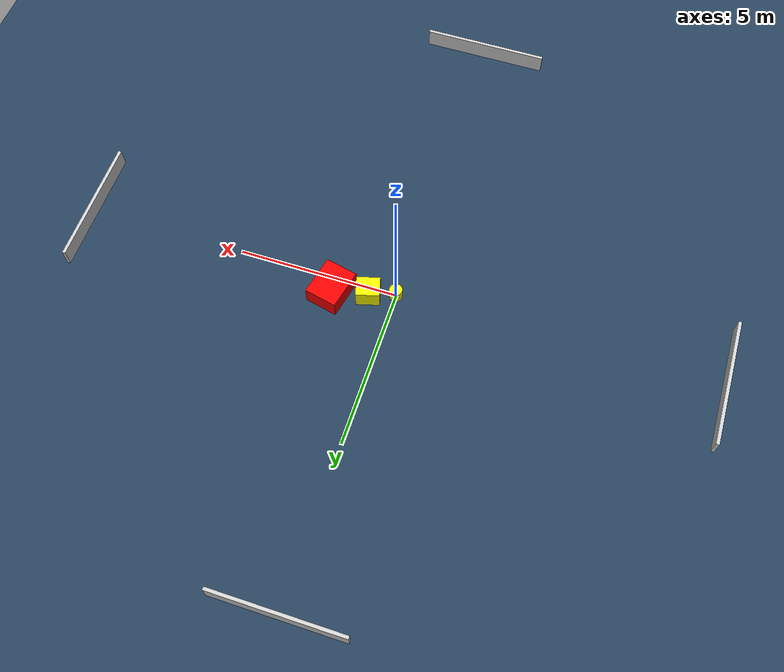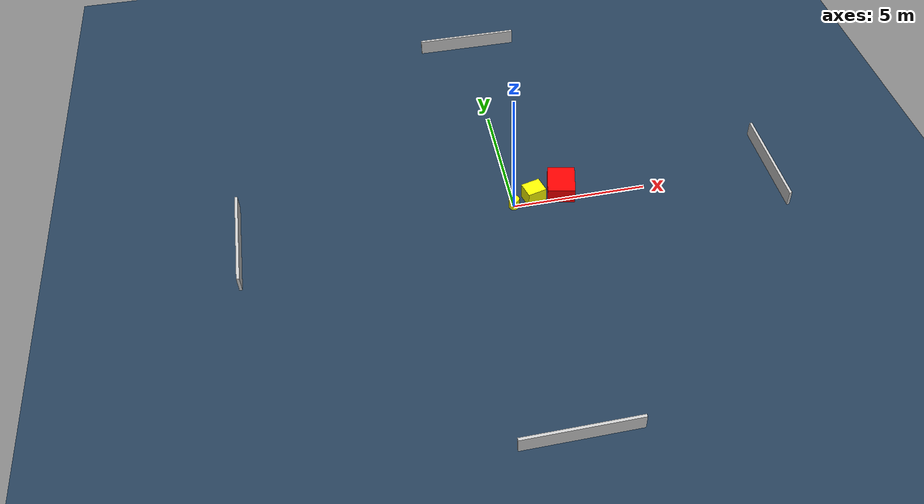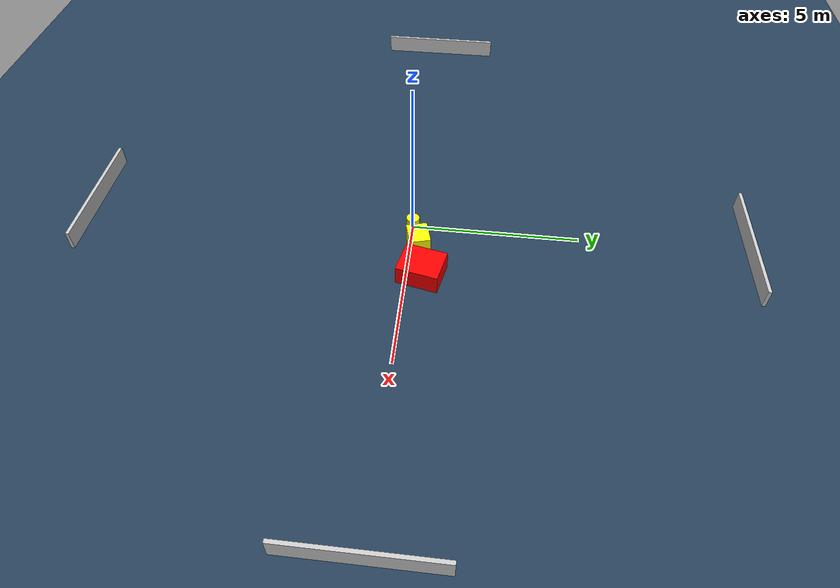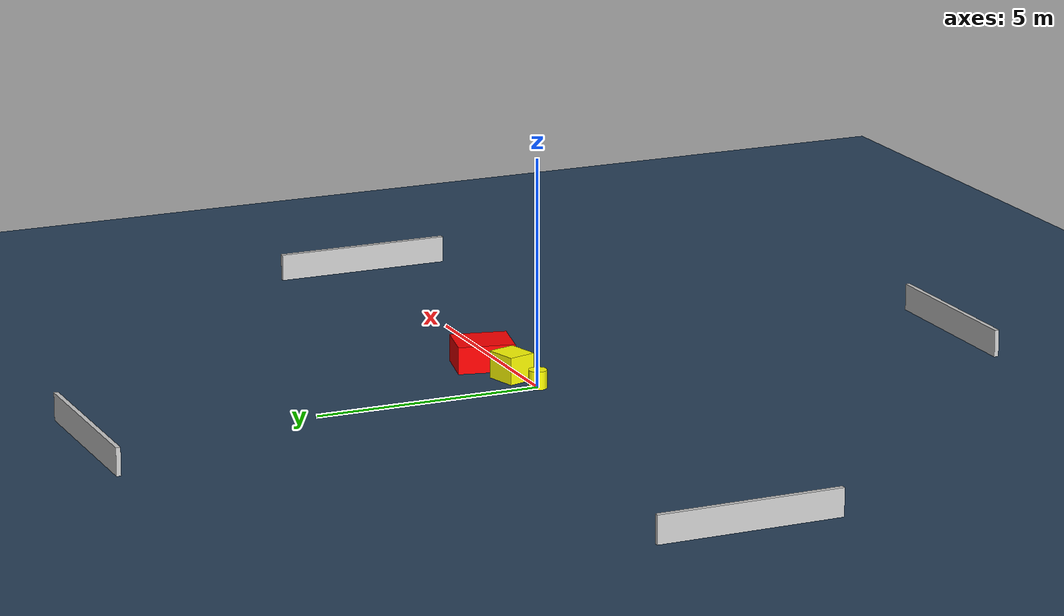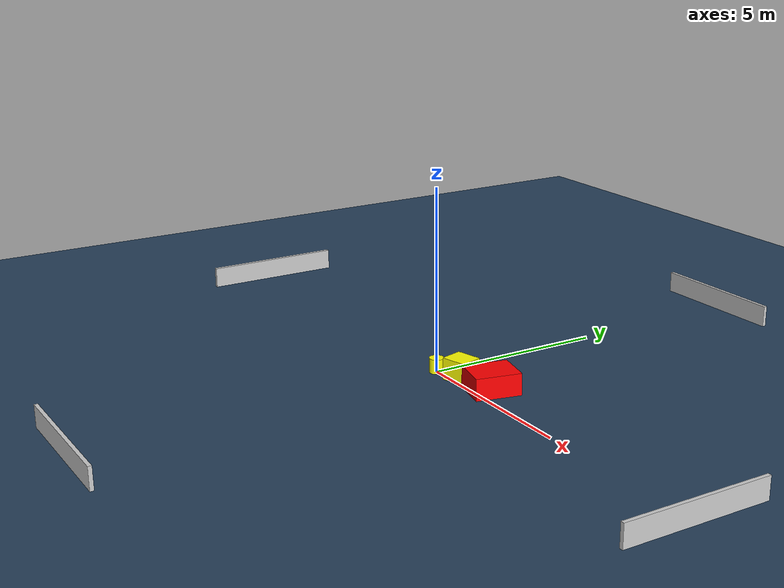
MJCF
<?xml version="1.0" ?>
<mujoco model="generated_environment">
  <option timestep="0.01" integrator="RK4" cone="elliptic"/>
  <default>
    <geom density="1"/>
  </default>
  <asset>
    <texture builtin="gradient" height="3072" name="skybox" rgb1="0.3 0.5 0.7" rgb2="0 0 0" type="skybox" width="512"/>
    <texture builtin="checker" height="300" name="groundplane" rgb1="0.2 0.3 0.4" rgb2="0.1 0.2 0.3" type="2d" width="300"/>
    <material name="groundplane" reflectance="0.2" texrepeat="5 5" texture="groundplane"/>
  </asset>
  <worldbody>
    <light dir="0 0 -1" directional="true" pos="0 0 1.5"/>
    <geom condim="3" friction="0.5 0.005 0.001" material="groundplane" name="floor" pos="0 0 0" size="0 0 0.05" type="plane"/>
    <body name="walls">
      <geom name="wall_1" condim="4" pos="-10.0 0.0 0.3" rgba="0.800000011920929 0.800000011920929 0.800000011920929 1.0" size="0.05 2.0 0.3" type="box"/>
      <geom name="wall_2" condim="4" pos="10.0 0.0 0.3" rgba="0.800000011920929 0.800000011920929 0.800000011920929 1.0" size="0.05 2.0 0.3" type="box"/>
      <geom name="wall_3" condim="4" pos="0.0 -10.0 0.3" rgba="0.800000011920929 0.800000011920929 0.800000011920929 1.0" size="2.0 0.05 0.3" type="box"/>
      <geom name="wall_4" condim="4" pos="0.0 10.0 0.3" rgba="0.800000011920929 0.800000011920929 0.800000011920929 1.0" size="2.0 0.05 0.3" type="box"/>
    </body>
    <body name="robot">
      <joint name="joint_x" type="slide" pos="0 0 0" axis="1 0 0"/>
      <joint name="joint_y" type="slide" pos="0 0 0" axis="0 1 0"/>
      <geom name="robot" type="cylinder" pos="0.0 0.0 0.2" size="0.2 0.2 0.0" mass="5.0" friction="1.0 0.005 0.0001" condim="4" rgba="1.0 1.0 0.0 1.0"/>
    </body>
    <body name="obstacle_1_movable">
      <geom name="obstacle_1_movable" condim="4" pos="0.8021905363866872 0.24943267917170994 0.3" euler="0 0 15.203372514107517" friction="0.0 0.005 0.001" rgba="1.0 1.0 0.0 1.0" size="0.3618647845617218 0.3124412828605566 0.3" type="box" mass="0.1"/>
      <joint type="free"/>
    </body>
    <body name="obstacle_2_static">
      <geom name="obstacle_2_static" condim="4" pos="1.9018140190237207 0.45780092666700606 0.3" euler="0 0 167.59699452282536" friction="0.0 0.005 0.001" rgba="1.0 0.0 0.0 1.0" size="0.5105318064924198 0.6211754598278905 0.3" type="box"/>
    </body>
  </worldbody>
  <actuator>
    <motor name="actuator_x" joint="joint_x" gear="1" ctrlrange="-1 1"/>
    <motor name="actuator_y" joint="joint_y" gear="1" ctrlrange="-1 1"/>
  </actuator>
</mujoco>
